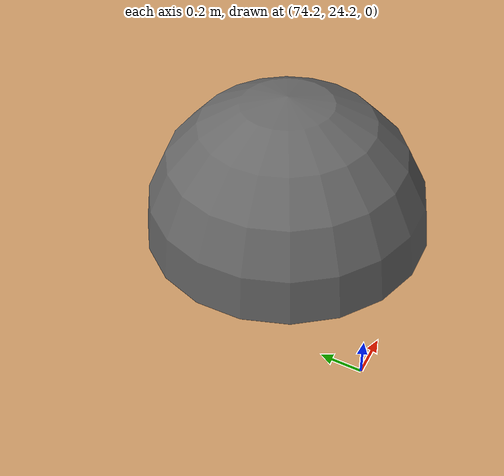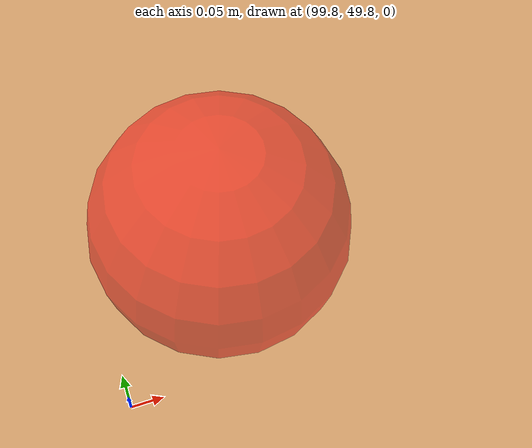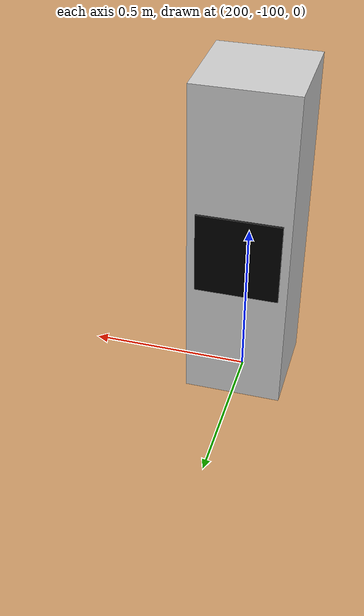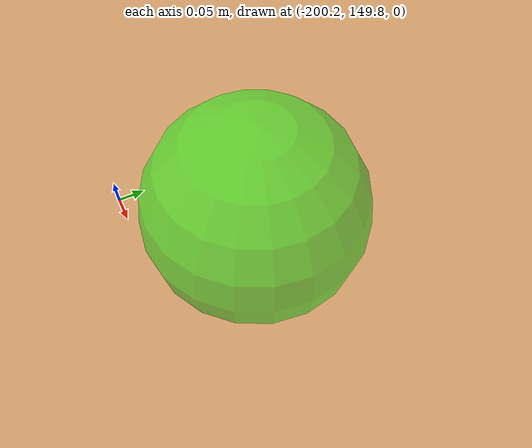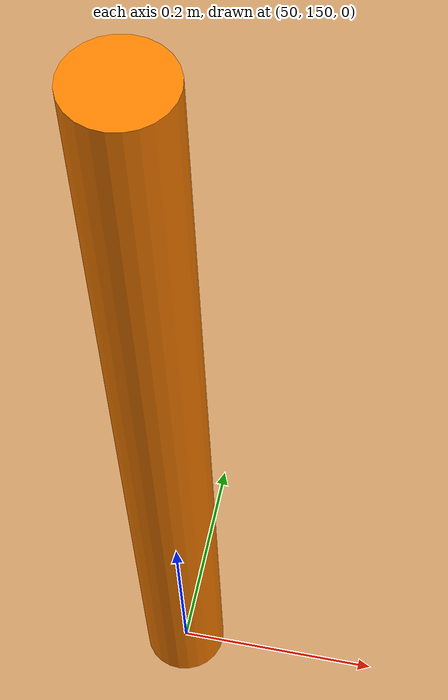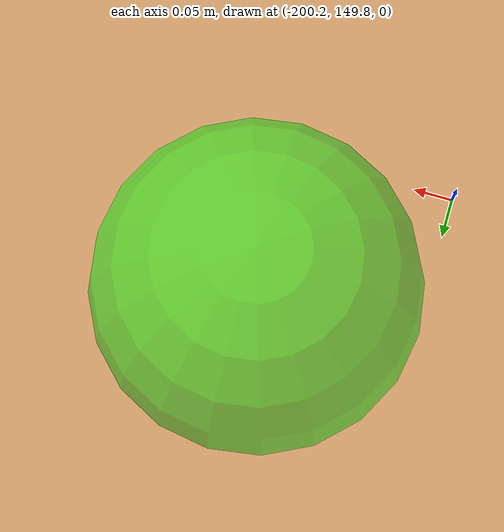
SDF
<?xml version="1.0"?>
<sdf version="1.7">
  <world name="urc_desert_terrain">

    <!-- Mars-like physics -->
    <physics name="mars_physics" type="ode">
      <gravity>0 0 -3.71</gravity>
      <ode>
        <solver>
          <type>quick</type>
          <iters>150</iters>
          <sor>1.4</sor>
        </solver>
        <constraints>
          <cfm>0.00001</cfm>
          <erp>0.2</erp>
        </constraints>
      </ode>
      <real_time_update_rate>1000.0</real_time_update_rate>
      <max_step_size>0.001</max_step_size>
    </physics>

    <!-- Mars atmosphere -->
    <atmosphere type="mars">
      <temperature>210</temperature>
      <pressure>636</pressure>
    </atmosphere>

    <!-- Lighting -->
    <light name="sun" type="directional">
      <pose>0 0 100 0 0 0</pose>
      <diffuse>0.9 0.85 0.8 1</diffuse>
      <direction>-0.3 0.4 -0.8</direction>
      <cast_shadows>true</cast_shadows>
    </light>

    <!-- Ground plane -->
    <model name="ground_plane">
      <static>true</static>
      <link name="link">
        <collision name="collision">
          <geometry>
            <plane>
              <normal>0 0 1</normal>
              <size>2000 2000</size>
            </plane>
          </geometry>
          <surface>
            <friction>
              <ode>
                <mu>0.8</mu>
                <mu2>0.6</mu2>
              </ode>
            </friction>
          </surface>
        </collision>
        <visual name="visual">
          <geometry>
            <plane>
              <normal>0 0 1</normal>
              <size>2000 2000</size>
            </plane>
          </geometry>
          <material>
            <diffuse>0.8 0.6 0.4 1</diffuse>
          </material>
        </visual>
      </link>
    </model>

    <!-- Competition waypoints -->
    <model name="waypoint_1">
      <pose>100 50 0.1 0 0 0</pose>
      <static>true</static>
      <link name="link">
        <visual name="visual">
          <geometry>
            <sphere>
              <radius>0.2</radius>
            </sphere>
          </geometry>
          <material>
            <diffuse>1 0 0 0.5</diffuse>
          </material>
        </visual>
      </link>
    </model>

    <model name="waypoint_2">
      <pose>-200 150 0.1 0 0 0</pose>
      <static>true</static>
      <link name="link">
        <visual name="visual">
          <geometry>
            <sphere>
              <radius>0.2</radius>
            </sphere>
          </geometry>
          <material>
            <diffuse>0 1 0 0.5</diffuse>
          </material>
        </visual>
      </link>
    </model>

    <!-- ArUco markers -->
    <model name="aruco_marker_1">
      <pose>200 -100 0 0 0 0</pose>
      <static>true</static>
      <link name="link">
        <collision name="collision">
          <geometry>
            <box>
              <size>0.3 0.3 2.0</size>
            </box>
          </geometry>
        </collision>
        <visual name="visual">
          <geometry>
            <box>
              <size>0.3 0.3 2.0</size>
            </box>
          </geometry>
          <material>
            <diffuse>0.8 0.8 0.8 1</diffuse>
          </material>
        </visual>
        <visual name="ar_tag">
          <pose>0 0.151 0.5 0 0 0</pose>
          <geometry>
            <box>
              <size>0.25 0.01 0.25</size>
            </box>
          </geometry>
          <material>
            <diffuse>0 0 0 1</diffuse>
          </material>
        </visual>
      </link>
    </model>

    <!-- Competition objects -->
    <model name="orange_mallet">
      <pose>50 150 0.4 0 0 0.3</pose>
      <static>true</static>
      <link name="link">
        <collision name="collision">
          <geometry>
            <cylinder>
              <radius>0.04</radius>
              <length>0.9</length>
            </cylinder>
          </geometry>
        </collision>
        <visual name="visual">
          <geometry>
            <cylinder>
              <radius>0.04</radius>
              <length>0.9</length>
            </cylinder>
          </geometry>
          <material>
            <diffuse>1 0.5 0 1</diffuse>
          </material>
        </visual>
      </link>
    </model>

    <!-- Terrain obstacles -->
    <model name="rock_1">
      <pose>75 25 0 0 0 0.5</pose>
      <static>true</static>
      <link name="link">
        <collision name="collision">
          <geometry>
            <sphere>
              <radius>0.8</radius>
            </sphere>
          </geometry>
        </collision>
        <visual name="visual">
          <geometry>
            <sphere>
              <radius>0.8</radius>
            </sphere>
          </geometry>
          <material>
            <diffuse>0.4 0.4 0.4 1</diffuse>
          </material>
        </visual>
      </link>
    </model>

  </world>
</sdf>
